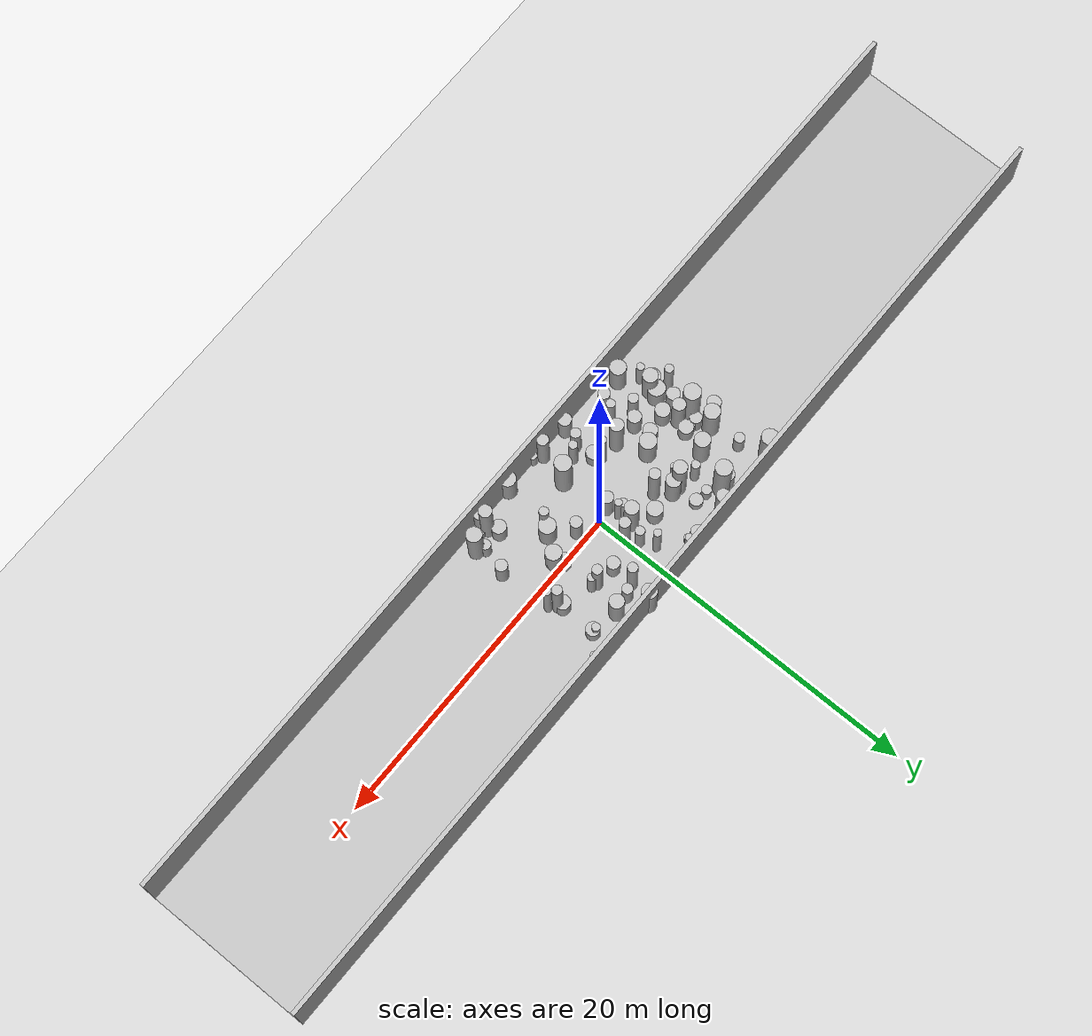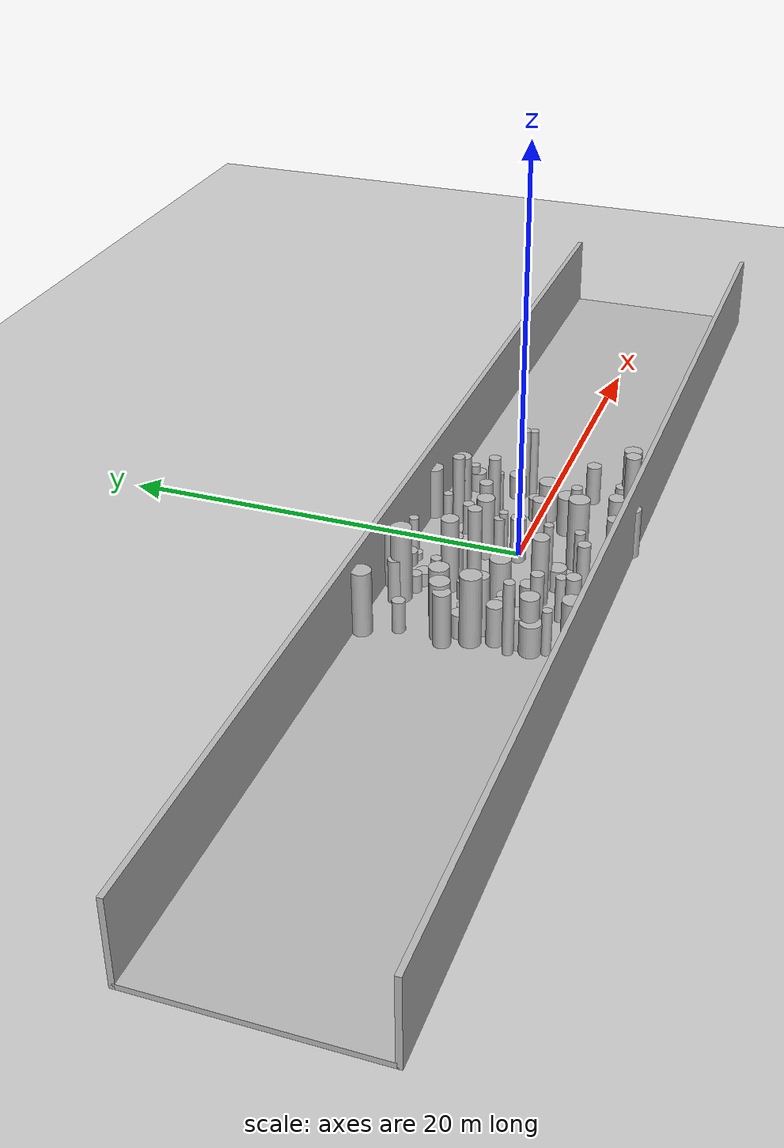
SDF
<sdf version="1.4">
 <world name="default">
  <include><uri>model://ground_plane</uri></include>
  <include><uri>model://sun</uri></include>
  <model name="forest">
   <static>true</static>
   <link name="cylinder6">
    <pose>3.5185023814617473 -0.5289069852324024 0.39152121170595017 0 0 0</pose>
    <visual name="visual">
     <geometry>
      <cylinder><radius>0.23570214300902984</radius><length>0.7830424234119003</length></cylinder>
     </geometry>
    </visual>
    <collision name="collision">
     <geometry>
      <cylinder><radius>0.23570214300902984</radius><length>0.7830424234119003</length></cylinder>
     </geometry>
     <max_contacts>0</max_contacts>
    </collision>
   </link>
   <link name="cylinder11">
    <pose>3.3686679684352363 3.89141718580448 1.4260544371908483 0 0 0</pose>
    <visual name="visual">
     <geometry>
      <cylinder><radius>0.4224523152110262</radius><length>2.8521088743816967</length></cylinder>
     </geometry>
    </visual>
    <collision name="collision">
     <geometry>
      <cylinder><radius>0.4224523152110262</radius><length>2.8521088743816967</length></cylinder>
     </geometry>
     <max_contacts>0</max_contacts>
    </collision>
   </link>
   <link name="cylinder14">
    <pose>5.428768677006516 0.9108389063789977 1.8576229997360225 0 0 0</pose>
    <visual name="visual">
     <geometry>
      <cylinder><radius>0.22108412347359485</radius><length>3.715245999472045</length></cylinder>
     </geometry>
    </visual>
    <collision name="collision">
     <geometry>
      <cylinder><radius>0.22108412347359485</radius><length>3.715245999472045</length></cylinder>
     </geometry>
     <max_contacts>0</max_contacts>
    </collision>
   </link>
   <link name="cylinder17">
    <pose>1.8629100106519232 4.8554674358730505 1.424527879419971 0 0 0</pose>
    <visual name="visual">
     <geometry>
      <cylinder><radius>0.44336391330813085</radius><length>2.849055758839942</length></cylinder>
     </geometry>
    </visual>
    <collision name="collision">
     <geometry>
      <cylinder><radius>0.44336391330813085</radius><length>2.849055758839942</length></cylinder>
     </geometry>
     <max_contacts>0</max_contacts>
    </collision>
   </link>
   <link name="cylinder20">
    <pose>-4.582425894276419 4.630502443168245 1.5284561691394896 0 0 0</pose>
    <visual name="visual">
     <geometry>
      <cylinder><radius>0.38533006311853774</radius><length>3.056912338278979</length></cylinder>
     </geometry>
    </visual>
    <collision name="collision">
     <geometry>
      <cylinder><radius>0.38533006311853774</radius><length>3.056912338278979</length></cylinder>
     </geometry>
     <max_contacts>0</max_contacts>
    </collision>
   </link>
   <link name="cylinder22">
    <pose>-2.8038115602074143 -2.1017270554419665 1.8182717871537928 0 0 0</pose>
    <visual name="visual">
     <geometry>
      <cylinder><radius>0.21597443946958594</radius><length>3.6365435743075856</length></cylinder>
     </geometry>
    </visual>
    <collision name="collision">
     <geometry>
      <cylinder><radius>0.21597443946958594</radius><length>3.6365435743075856</length></cylinder>
     </geometry>
     <max_contacts>0</max_contacts>
    </collision>
   </link>
   <link name="cylinder24">
    <pose>5.068609548155727 1.282792792949734 1.9314872287129736 0 0 0</pose>
    <visual name="visual">
     <geometry>
      <cylinder><radius>0.2920961110066845</radius><length>3.8629744574259473</length></cylinder>
     </geometry>
    </visual>
    <collision name="collision">
     <geometry>
      <cylinder><radius>0.2920961110066845</radius><length>3.8629744574259473</length></cylinder>
     </geometry>
     <max_contacts>0</max_contacts>
    </collision>
   </link>
   <link name="cylinder27">
    <pose>-4.551818297995101 -0.4273532509292117 1.2950522131416735 0 0 0</pose>
    <visual name="visual">
     <geometry>
      <cylinder><radius>0.4851396762435782</radius><length>2.590104426283347</length></cylinder>
     </geometry>
    </visual>
    <collision name="collision">
     <geometry>
      <cylinder><radius>0.4851396762435782</radius><length>2.590104426283347</length></cylinder>
     </geometry>
     <max_contacts>0</max_contacts>
    </collision>
   </link>
   <link name="cylinder29">
    <pose>-0.03519675320470128 1.655959014261005 1.8078357501995028 0 0 0</pose>
    <visual name="visual">
     <geometry>
      <cylinder><radius>0.3177926499357096</radius><length>3.6156715003990056</length></cylinder>
     </geometry>
    </visual>
    <collision name="collision">
     <geometry>
      <cylinder><radius>0.3177926499357096</radius><length>3.6156715003990056</length></cylinder>
     </geometry>
     <max_contacts>0</max_contacts>
    </collision>
   </link>
   <link name="cylinder33">
    <pose>4.9791727919138715 3.6066872790392157 0.6087659169997937 0 0 0</pose>
    <visual name="visual">
     <geometry>
      <cylinder><radius>0.40601135492092966</radius><length>1.2175318339995873</length></cylinder>
     </geometry>
    </visual>
    <collision name="collision">
     <geometry>
      <cylinder><radius>0.40601135492092966</radius><length>1.2175318339995873</length></cylinder>
     </geometry>
     <max_contacts>0</max_contacts>
    </collision>
   </link>
   <link name="cylinder35">
    <pose>-8.36797537119746 0.9935382336451521 1.450762492947488 0 0 0</pose>
    <visual name="visual">
     <geometry>
      <cylinder><radius>0.39625561410346916</radius><length>2.901524985894976</length></cylinder>
     </geometry>
    </visual>
    <collision name="collision">
     <geometry>
      <cylinder><radius>0.39625561410346916</radius><length>2.901524985894976</length></cylinder>
     </geometry>
     <max_contacts>0</max_contacts>
    </collision>
   </link>
   <link name="cylinder37">
    <pose>-7.121782881938877 0.5288827580215489 0.6344651029781753 0 0 0</pose>
    <visual name="visual">
     <geometry>
      <cylinder><radius>0.20164770665736817</radius><length>1.2689302059563505</length></cylinder>
     </geometry>
    </visual>
    <collision name="collision">
     <geometry>
      <cylinder><radius>0.20164770665736817</radius><length>1.2689302059563505</length></cylinder>
     </geometry>
     <max_contacts>0</max_contacts>
    </collision>
   </link>
   <link name="cylinder39">
    <pose>-6.638270380893967 -1.0880244645927197 0.8703303389355472 0 0 0</pose>
    <visual name="visual">
     <geometry>
      <cylinder><radius>0.4321729143397579</radius><length>1.7406606778710945</length></cylinder>
     </geometry>
    </visual>
    <collision name="collision">
     <geometry>
      <cylinder><radius>0.4321729143397579</radius><length>1.7406606778710945</length></cylinder>
     </geometry>
     <max_contacts>0</max_contacts>
    </collision>
   </link>
   <link name="cylinder41">
    <pose>-2.7175389624674793 4.491068459604094 0.4643532162588451 0 0 0</pose>
    <visual name="visual">
     <geometry>
      <cylinder><radius>0.3949513655718183</radius><length>0.9287064325176903</length></cylinder>
     </geometry>
    </visual>
    <collision name="collision">
     <geometry>
      <cylinder><radius>0.3949513655718183</radius><length>0.9287064325176903</length></cylinder>
     </geometry>
     <max_contacts>0</max_contacts>
    </collision>
   </link>
   <link name="cylinder42">
    <pose>5.435321524717381 -4.030631602253351 1.7378331856041922 0 0 0</pose>
    <visual name="visual">
     <geometry>
      <cylinder><radius>0.4397327907778434</radius><length>3.4756663712083844</length></cylinder>
     </geometry>
    </visual>
    <collision name="collision">
     <geometry>
      <cylinder><radius>0.4397327907778434</radius><length>3.4756663712083844</length></cylinder>
     </geometry>
     <max_contacts>0</max_contacts>
    </collision>
   </link>
   <link name="cylinder43">
    <pose>-0.42939339879843885 2.3731249413525664 1.2807768209993284 0 0 0</pose>
    <visual name="visual">
     <geometry>
      <cylinder><radius>0.2696798974898803</radius><length>2.561553641998657</length></cylinder>
     </geometry>
    </visual>
    <collision name="collision">
     <geometry>
      <cylinder><radius>0.2696798974898803</radius><length>2.561553641998657</length></cylinder>
     </geometry>
     <max_contacts>0</max_contacts>
    </collision>
   </link>
   <link name="cylinder46">
    <pose>-7.584552236493696 -3.4042703069322378 1.2165378588113809 0 0 0</pose>
    <visual name="visual">
     <geometry>
      <cylinder><radius>0.22346558559214158</radius><length>2.4330757176227618</length></cylinder>
     </geometry>
    </visual>
    <collision name="collision">
     <geometry>
      <cylinder><radius>0.22346558559214158</radius><length>2.4330757176227618</length></cylinder>
     </geometry>
     <max_contacts>0</max_contacts>
    </collision>
   </link>
   <link name="cylinder52">
    <pose>-5.837591543482734 4.02184528055051 1.2111605436664326 0 0 0</pose>
    <visual name="visual">
     <geometry>
      <cylinder><radius>0.34190522518814903</radius><length>2.422321087332865</length></cylinder>
     </geometry>
    </visual>
    <collision name="collision">
     <geometry>
      <cylinder><radius>0.34190522518814903</radius><length>2.422321087332865</length></cylinder>
     </geometry>
     <max_contacts>0</max_contacts>
    </collision>
   </link>
   <link name="cylinder53">
    <pose>-6.78520961096234 0.41298843062179547 0.6803893124168536 0 0 0</pose>
    <visual name="visual">
     <geometry>
      <cylinder><radius>0.42122331053432893</radius><length>1.3607786248337073</length></cylinder>
     </geometry>
    </visual>
    <collision name="collision">
     <geometry>
      <cylinder><radius>0.42122331053432893</radius><length>1.3607786248337073</length></cylinder>
     </geometry>
     <max_contacts>0</max_contacts>
    </collision>
   </link>
   <link name="cylinder54">
    <pose>1.292009153334039 -0.5652169246899916 1.2028669819020215 0 0 0</pose>
    <visual name="visual">
     <geometry>
      <cylinder><radius>0.3346198052062162</radius><length>2.405733963804043</length></cylinder>
     </geometry>
    </visual>
    <collision name="collision">
     <geometry>
      <cylinder><radius>0.3346198052062162</radius><length>2.405733963804043</length></cylinder>
     </geometry>
     <max_contacts>0</max_contacts>
    </collision>
   </link>
   <link name="cylinder55">
    <pose>-6.375352558614871 1.7987873984926273 1.395333566689384 0 0 0</pose>
    <visual name="visual">
     <geometry>
      <cylinder><radius>0.45533462670216324</radius><length>2.790667133378768</length></cylinder>
     </geometry>
    </visual>
    <collision name="collision">
     <geometry>
      <cylinder><radius>0.45533462670216324</radius><length>2.790667133378768</length></cylinder>
     </geometry>
     <max_contacts>0</max_contacts>
    </collision>
   </link>
   <link name="cylinder58">
    <pose>2.031621605337836 -2.1486612537931915 1.459682591462192 0 0 0</pose>
    <visual name="visual">
     <geometry>
      <cylinder><radius>0.2688347873922573</radius><length>2.919365182924384</length></cylinder>
     </geometry>
    </visual>
    <collision name="collision">
     <geometry>
      <cylinder><radius>0.2688347873922573</radius><length>2.919365182924384</length></cylinder>
     </geometry>
     <max_contacts>0</max_contacts>
    </collision>
   </link>
   <link name="cylinder61">
    <pose>-3.9157811447119037 4.613219586309514 0.35501372298618217 0 0 0</pose>
    <visual name="visual">
     <geometry>
      <cylinder><radius>0.28874540128218346</radius><length>0.7100274459723643</length></cylinder>
     </geometry>
    </visual>
    <collision name="collision">
     <geometry>
      <cylinder><radius>0.28874540128218346</radius><length>0.7100274459723643</length></cylinder>
     </geometry>
     <max_contacts>0</max_contacts>
    </collision>
   </link>
   <link name="cylinder67">
    <pose>-4.726940750155467 1.2831766855861932 0.5821106491188945 0 0 0</pose>
    <visual name="visual">
     <geometry>
      <cylinder><radius>0.21715590679515623</radius><length>1.164221298237789</length></cylinder>
     </geometry>
    </visual>
    <collision name="collision">
     <geometry>
      <cylinder><radius>0.21715590679515623</radius><length>1.164221298237789</length></cylinder>
     </geometry>
     <max_contacts>0</max_contacts>
    </collision>
   </link>
   <link name="cylinder68">
    <pose>-8.06831903170766 -1.8586471831165174 1.9072403379446587 0 0 0</pose>
    <visual name="visual">
     <geometry>
      <cylinder><radius>0.2509423791881883</radius><length>3.8144806758893175</length></cylinder>
     </geometry>
    </visual>
    <collision name="collision">
     <geometry>
      <cylinder><radius>0.2509423791881883</radius><length>3.8144806758893175</length></cylinder>
     </geometry>
     <max_contacts>0</max_contacts>
    </collision>
   </link>
   <link name="cylinder75">
    <pose>-7.86339897560223 -0.11784825348554229 1.8417994693246726 0 0 0</pose>
    <visual name="visual">
     <geometry>
      <cylinder><radius>0.48812707964760427</radius><length>3.6835989386493453</length></cylinder>
     </geometry>
    </visual>
    <collision name="collision">
     <geometry>
      <cylinder><radius>0.48812707964760427</radius><length>3.6835989386493453</length></cylinder>
     </geometry>
     <max_contacts>0</max_contacts>
    </collision>
   </link>
   <link name="cylinder77">
    <pose>-7.9929294260253485 3.0834245214219056 0.9000446579199859 0 0 0</pose>
    <visual name="visual">
     <geometry>
      <cylinder><radius>0.30213135898434745</radius><length>1.8000893158399718</length></cylinder>
     </geometry>
    </visual>
    <collision name="collision">
     <geometry>
      <cylinder><radius>0.30213135898434745</radius><length>1.8000893158399718</length></cylinder>
     </geometry>
     <max_contacts>0</max_contacts>
    </collision>
   </link>
   <link name="cylinder85">
    <pose>-4.9479325844891555 -3.3142753631086483 1.232136252204616 0 0 0</pose>
    <visual name="visual">
     <geometry>
      <cylinder><radius>0.2583030177528004</radius><length>2.464272504409232</length></cylinder>
     </geometry>
    </visual>
    <collision name="collision">
     <geometry>
      <cylinder><radius>0.2583030177528004</radius><length>2.464272504409232</length></cylinder>
     </geometry>
     <max_contacts>0</max_contacts>
    </collision>
   </link>
   <link name="cylinder89">
    <pose>-4.133881578881432 2.0504461589010035 1.9580861341889344 0 0 0</pose>
    <visual name="visual">
     <geometry>
      <cylinder><radius>0.4007452378426113</radius><length>3.916172268377869</length></cylinder>
     </geometry>
    </visual>
    <collision name="collision">
     <geometry>
      <cylinder><radius>0.4007452378426113</radius><length>3.916172268377869</length></cylinder>
     </geometry>
     <max_contacts>0</max_contacts>
    </collision>
   </link>
   <link name="cylinder91">
    <pose>5.568027956149539 -2.129386242136756 1.122439592235711 0 0 0</pose>
    <visual name="visual">
     <geometry>
      <cylinder><radius>0.3507586706097388</radius><length>2.244879184471422</length></cylinder>
     </geometry>
    </visual>
    <collision name="collision">
     <geometry>
      <cylinder><radius>0.3507586706097388</radius><length>2.244879184471422</length></cylinder>
     </geometry>
     <max_contacts>0</max_contacts>
    </collision>
   </link>
   <link name="cylinder92">
    <pose>4.62457770195504 -4.654079184292642 0.53921626713819 0 0 0</pose>
    <visual name="visual">
     <geometry><cylinder><radius>0.4698151321451813</radius><length>1.07843253427638</length></cylinder></geometry>
    </visual>
    <collision name="collision">
     <geometry><cylinder><radius>0.4698151321451813</radius><length>1.07843253427638</length></cylinder></geometry>
     <max_contacts>0</max_contacts>
    </collision>
   </link>
   <link name="cylinder95">
    <pose>-4.063080111225741 3.3109602660396096 0.4492727110088675 0 0 0</pose>
    <visual name="visual">
     <geometry>
      <cylinder><radius>0.3734270932033604</radius><length>0.898545422017735</length></cylinder>
     </geometry>
    </visual>
    <collision name="collision">
     <geometry>
      <cylinder><radius>0.3734270932033604</radius><length>0.898545422017735</length></cylinder>
     </geometry>
     <max_contacts>0</max_contacts>
    </collision>
   </link>
   <link name="cylinder100">
    <pose>-5.304415636830189 -1.9452511584971974 1.0250195915184142 0 0 0</pose>
    <visual name="visual">
     <geometry>
      <cylinder><radius>0.38851414279175367</radius><length>2.0500391830368283</length></cylinder>
     </geometry>
    </visual>
    <collision name="collision">
     <geometry>
      <cylinder><radius>0.38851414279175367</radius><length>2.0500391830368283</length></cylinder>
     </geometry>
     <max_contacts>0</max_contacts>
    </collision>
   </link>
   <link name="cylinder101">
    <pose>-0.8791108530786254 0.5381958660300565 1.3533509763045644 0 0 0</pose>
    <visual name="visual">
     <geometry>
      <cylinder><radius>0.20992691567685062</radius><length>2.7067019526091287</length></cylinder>
     </geometry>
    </visual>
    <collision name="collision">
     <geometry>
      <cylinder><radius>0.20992691567685062</radius><length>2.7067019526091287</length></cylinder>
     </geometry>
     <max_contacts>0</max_contacts>
    </collision>
   </link>
   <link name="cylinder102">
    <pose>2.359691901459893 -1.6537936487013818 1.1095147916537897 0 0 0</pose>
    <visual name="visual">
     <geometry>
      <cylinder><radius>0.4841076681313177</radius><length>2.2190295833075795</length></cylinder>
     </geometry>
    </visual>
    <collision name="collision">
     <geometry>
      <cylinder><radius>0.4841076681313177</radius><length>2.2190295833075795</length></cylinder>
     </geometry>
     <max_contacts>0</max_contacts>
    </collision>
   </link>
   <link name="cylinder107">
    <pose>-7.5667391604941905 -1.1262234624518919 1.1116669008024314 0 0 0</pose>
    <visual name="visual">
     <geometry>
      <cylinder><radius>0.38654785589996177</radius><length>2.2233338016048627</length></cylinder>
     </geometry>
    </visual>
    <collision name="collision">
     <geometry>
      <cylinder><radius>0.38654785589996177</radius><length>2.2233338016048627</length></cylinder>
     </geometry>
     <max_contacts>0</max_contacts>
    </collision>
   </link>
   <link name="cylinder108">
    <pose>-4.781896564689426 3.4356363931823974 0.5766766952382925 0 0 0</pose>
    <visual name="visual">
     <geometry>
      <cylinder><radius>0.2830579079482414</radius><length>1.153353390476585</length></cylinder>
     </geometry>
    </visual>
    <collision name="collision">
     <geometry>
      <cylinder><radius>0.2830579079482414</radius><length>1.153353390476585</length></cylinder>
     </geometry>
     <max_contacts>0</max_contacts>
    </collision>
   </link>
   <link name="cylinder110">
    <pose>-1.7820644085235742 -3.2928867336535426 1.4472986856161145 0 0 0</pose>
    <visual name="visual">
     <geometry>
      <cylinder><radius>0.24222179428633966</radius><length>2.894597371232229</length></cylinder>
     </geometry>
    </visual>
    <collision name="collision">
     <geometry>
      <cylinder><radius>0.24222179428633966</radius><length>2.894597371232229</length></cylinder>
     </geometry>
     <max_contacts>0</max_contacts>
    </collision>
   </link>
   <link name="cylinder111">
    <pose>-7.738419218163518 -2.741941550900735 0.8919443139001757 0 0 0</pose>
    <visual name="visual">
     <geometry>
      <cylinder><radius>0.49499994064638964</radius><length>1.7838886278003514</length></cylinder>
     </geometry>
    </visual>
    <collision name="collision">
     <geometry>
      <cylinder><radius>0.49499994064638964</radius><length>1.7838886278003514</length></cylinder>
     </geometry>
     <max_contacts>0</max_contacts>
    </collision>
   </link>
   <link name="cylinder114">
    <pose>-1.8825665534972345 4.5487787415198895 1.1060311966908014 0 0 0</pose>
    <visual name="visual">
     <geometry>
      <cylinder><radius>0.2293340421734429</radius><length>2.212062393381603</length></cylinder>
     </geometry>
    </visual>
    <collision name="collision">
     <geometry>
      <cylinder><radius>0.2293340421734429</radius><length>2.212062393381603</length></cylinder>
     </geometry>
     <max_contacts>0</max_contacts>
    </collision>
   </link>
   <link name="cylinder118">
    <pose>1.6154260623438503 2.233932719052442 0.8501620640769003 0 0 0</pose>
    <visual name="visual">
     <geometry>
      <cylinder><radius>0.37704019793430926</radius><length>1.7003241281538006</length></cylinder>
     </geometry>
    </visual>
    <collision name="collision">
     <geometry>
      <cylinder><radius>0.37704019793430926</radius><length>1.7003241281538006</length></cylinder>
     </geometry>
     <max_contacts>0</max_contacts>
    </collision>
   </link>
   <link name="cylinder123">
    <pose>5.103503663450859 -3.6351608006627245 0.8015108190778302 0 0 0</pose>
    <visual name="visual">
     <geometry>
      <cylinder><radius>0.29943888863966983</radius><length>1.6030216381556603</length></cylinder>
     </geometry>
    </visual>
    <collision name="collision">
     <geometry>
      <cylinder><radius>0.29943888863966983</radius><length>1.6030216381556603</length></cylinder>
     </geometry>
     <max_contacts>0</max_contacts>
    </collision>
   </link>
   <link name="cylinder131">
    <pose>-0.7801636043734419 -0.150089046171205 1.2463945065441315 0 0 0</pose>
    <visual name="visual">
     <geometry>
      <cylinder><radius>0.3616465610508588</radius><length>2.492789013088263</length></cylinder>
     </geometry>
    </visual>
    <collision name="collision">
     <geometry>
      <cylinder><radius>0.3616465610508588</radius><length>2.492789013088263</length></cylinder>
     </geometry>
     <max_contacts>0</max_contacts>
    </collision>
   </link>
   <link name="cylinder132">
    <pose>4.169947233092998 -4.313478109241666 1.937510638481081 0 0 0</pose>
    <visual name="visual">
     <geometry>
      <cylinder><radius>0.36855853010477235</radius><length>3.875021276962162</length></cylinder>
     </geometry>
    </visual>
    <collision name="collision">
     <geometry>
      <cylinder><radius>0.36855853010477235</radius><length>3.875021276962162</length></cylinder>
     </geometry>
     <max_contacts>0</max_contacts>
    </collision>
   </link>
   <link name="cylinder135">
    <pose>-2.0958335533236614 2.052365802990902 0.8374159650345436 0 0 0</pose>
    <visual name="visual">
     <geometry>
      <cylinder><radius>0.4544328570836889</radius><length>1.6748319300690873</length></cylinder>
     </geometry>
    </visual>
    <collision name="collision">
     <geometry>
      <cylinder><radius>0.4544328570836889</radius><length>1.6748319300690873</length></cylinder>
     </geometry>
     <max_contacts>0</max_contacts>
    </collision>
   </link>
   <link name="cylinder141">
    <pose>5.939470307940191 4.496486625146176 0.38602793769903704 0 0 0</pose>
    <visual name="visual">
     <geometry>
      <cylinder><radius>0.23527448203063736</radius><length>0.7720558753980741</length></cylinder>
     </geometry>
    </visual>
    <collision name="collision">
     <geometry>
      <cylinder><radius>0.23527448203063736</radius><length>0.7720558753980741</length></cylinder>
     </geometry>
     <max_contacts>0</max_contacts>
    </collision>
   </link>
   <link name="cylinder142">
    <pose>-0.8719587765020584 -4.6155493158363665 1.6666019485280386 0 0 0</pose>
    <visual name="visual">
     <geometry>
      <cylinder><radius>0.33180802724797065</radius><length>3.333203897056077</length></cylinder>
     </geometry>
    </visual>
    <collision name="collision">
     <geometry>
      <cylinder><radius>0.33180802724797065</radius><length>3.333203897056077</length></cylinder>
     </geometry>
     <max_contacts>0</max_contacts>
    </collision>
   </link>
   <link name="cylinder144">
    <pose>-1.094753909102863 0.6763799533621597 1.2402863712947536 0 0 0</pose>
    <visual name="visual">
     <geometry>
      <cylinder><radius>0.2472618622897371</radius><length>2.480572742589507</length></cylinder>
     </geometry>
    </visual>
    <collision name="collision">
     <geometry>
      <cylinder><radius>0.2472618622897371</radius><length>2.480572742589507</length></cylinder>
     </geometry>
     <max_contacts>0</max_contacts>
    </collision>
   </link>
   <link name="cylinder151">
    <pose>3.0995055907705797 1.9863765858106017 1.1941451476075606 0 0 0</pose>
    <visual name="visual">
     <geometry>
      <cylinder><radius>0.2401048341541558</radius><length>2.3882902952151213</length></cylinder>
     </geometry>
    </visual>
    <collision name="collision">
     <geometry>
      <cylinder><radius>0.2401048341541558</radius><length>2.3882902952151213</length></cylinder>
     </geometry>
     <max_contacts>0</max_contacts>
    </collision>
   </link>
   <link name="cylinder155">
    <pose>-7.853638606802438 1.2653129247641246 1.5405360413037148 0 0 0</pose>
    <visual name="visual">
     <geometry>
      <cylinder><radius>0.45974221142608956</radius><length>3.0810720826074296</length></cylinder>
     </geometry>
    </visual>
    <collision name="collision">
     <geometry>
      <cylinder><radius>0.45974221142608956</radius><length>3.0810720826074296</length></cylinder>
     </geometry>
     <max_contacts>0</max_contacts>
    </collision>
   </link>
   <link name="cylinder159">
    <pose>-5.17032720073934 2.3278282235750822 1.2100075372433219 0 0 0</pose>
    <visual name="visual">
     <geometry>
      <cylinder><radius>0.24673944830269962</radius><length>2.4200150744866438</length></cylinder>
     </geometry>
    </visual>
    <collision name="collision">
     <geometry>
      <cylinder><radius>0.24673944830269962</radius><length>2.4200150744866438</length></cylinder>
     </geometry>
     <max_contacts>0</max_contacts>
    </collision>
   </link>
   <link name="cylinder165">
    <pose>4.868396753213833 3.723186111048655 0.8080699979317668 0 0 0</pose>
    <visual name="visual">
     <geometry>
      <cylinder><radius>0.23584440354552416</radius><length>1.6161399958635336</length></cylinder>
     </geometry>
    </visual>
    <collision name="collision">
     <geometry>
      <cylinder><radius>0.23584440354552416</radius><length>1.6161399958635336</length></cylinder>
     </geometry>
     <max_contacts>0</max_contacts>
    </collision>
   </link>
   <link name="cylinder169">
    <pose>-5.80126149885886 -2.4602700475481076 1.4835407058492824 0 0 0</pose>
    <visual name="visual">
     <geometry><cylinder><radius>0.295815843256171</radius><length>2.967081411698565</length></cylinder></geometry>
    </visual>
    <collision name="collision">
     <geometry><cylinder><radius>0.295815843256171</radius><length>2.967081411698565</length></cylinder></geometry>
     <max_contacts>0</max_contacts>
    </collision>
   </link>
   <link name="cylinder170">
    <pose>-0.9453779610122268 1.375945474798117 1.6748570057047196 0 0 0</pose>
    <visual name="visual">
     <geometry>
      <cylinder><radius>0.4101207807458317</radius><length>3.3497140114094393</length></cylinder>
     </geometry>
    </visual>
    <collision name="collision">
     <geometry>
      <cylinder><radius>0.4101207807458317</radius><length>3.3497140114094393</length></cylinder>
     </geometry>
     <max_contacts>0</max_contacts>
    </collision>
   </link>
   <link name="cylinder174">
    <pose>-3.006451312456882 1.254470587256833 1.9706674856594382 0 0 0</pose>
    <visual name="visual">
     <geometry>
      <cylinder><radius>0.3213861851763068</radius><length>3.9413349713188763</length></cylinder>
     </geometry>
    </visual>
    <collision name="collision">
     <geometry>
      <cylinder><radius>0.3213861851763068</radius><length>3.9413349713188763</length></cylinder>
     </geometry>
     <max_contacts>0</max_contacts>
    </collision>
   </link>
   <link name="cylinder180">
    <pose>3.0407207709707826 0.047815309467164724 0.7211353288050918 0 0 0</pose>
    <visual name="visual">
     <geometry>
      <cylinder><radius>0.3730804103344416</radius><length>1.4422706576101836</length></cylinder>
     </geometry>
    </visual>
    <collision name="collision">
     <geometry>
      <cylinder><radius>0.3730804103344416</radius><length>1.4422706576101836</length></cylinder>
     </geometry>
     <max_contacts>0</max_contacts>
    </collision>
   </link>
   <link name="cylinder183">
    <pose>3.2916543806976577 -0.4611899866513376 1.131671608033827 0 0 0</pose>
    <visual name="visual">
     <geometry>
      <cylinder><radius>0.46799469538631927</radius><length>2.263343216067654</length></cylinder>
     </geometry>
    </visual>
    <collision name="collision">
     <geometry>
      <cylinder><radius>0.46799469538631927</radius><length>2.263343216067654</length></cylinder>
     </geometry>
     <max_contacts>0</max_contacts>
    </collision>
   </link>
   <link name="cylinder186">
    <pose>-7.362092057929836 -2.0931903494131343 0.9224191874178875 0 0 0</pose>
    <visual name="visual">
     <geometry>
      <cylinder><radius>0.4954029734934168</radius><length>1.844838374835775</length></cylinder>
     </geometry>
    </visual>
    <collision name="collision">
     <geometry>
      <cylinder><radius>0.4954029734934168</radius><length>1.844838374835775</length></cylinder>
     </geometry>
     <max_contacts>0</max_contacts>
    </collision>
   </link>
   <link name="cylinder189">
    <pose>-0.4539019729747409 -2.87350506374332 1.8964646522176463 0 0 0</pose>
    <visual name="visual">
     <geometry>
      <cylinder><radius>0.4870317236346289</radius><length>3.7929293044352925</length></cylinder>
     </geometry>
    </visual>
    <collision name="collision">
     <geometry>
      <cylinder><radius>0.4870317236346289</radius><length>3.7929293044352925</length></cylinder>
     </geometry>
     <max_contacts>0</max_contacts>
    </collision>
   </link>
   <link name="cylinder191">
    <pose>-0.34362502153142316 -4.899718720312674 0.6577862824795322 0 0 0</pose>
    <visual name="visual">
     <geometry>
      <cylinder><radius>0.22334584676981428</radius><length>1.3155725649590644</length></cylinder>
     </geometry>
    </visual>
    <collision name="collision">
     <geometry>
      <cylinder><radius>0.22334584676981428</radius><length>1.3155725649590644</length></cylinder>
     </geometry>
     <max_contacts>0</max_contacts>
    </collision>
   </link>
   <link name="cylinder194">
    <pose>2.32924743152898 3.7701776928540305 1.0433783294965275 0 0 0</pose>
    <visual name="visual">
     <geometry>
      <cylinder><radius>0.30374553742472143</radius><length>2.086756658993055</length></cylinder>
     </geometry>
    </visual>
    <collision name="collision">
     <geometry>
      <cylinder><radius>0.30374553742472143</radius><length>2.086756658993055</length></cylinder>
     </geometry>
     <max_contacts>0</max_contacts>
    </collision>
   </link>
   <link name="cylinder197">
    <pose>1.7558704998155648 -4.859777973959286 1.2329090905790767 0 0 0</pose>
    <visual name="visual">
     <geometry>
      <cylinder><radius>0.45902501582334304</radius><length>2.4658181811581534</length></cylinder>
     </geometry>
    </visual>
    <collision name="collision">
     <geometry>
      <cylinder><radius>0.45902501582334304</radius><length>2.4658181811581534</length></cylinder>
     </geometry>
     <max_contacts>0</max_contacts>
    </collision>
   </link>
   <link name="cylinder204">
    <pose>-7.51185301659784 0.49860019519103993 0.7160447449226214 0 0 0</pose>
    <visual name="visual">
     <geometry>
      <cylinder><radius>0.3563672072978108</radius><length>1.4320894898452428</length></cylinder>
     </geometry>
    </visual>
    <collision name="collision">
     <geometry>
      <cylinder><radius>0.3563672072978108</radius><length>1.4320894898452428</length></cylinder>
     </geometry>
     <max_contacts>0</max_contacts>
    </collision>
   </link>
   <link name="cylinder205">
    <pose>-2.550080547083759 -2.51753691965365 0.6707613321633495 0 0 0</pose>
    <visual name="visual">
     <geometry>
      <cylinder><radius>0.43229291049036384</radius><length>1.341522664326699</length></cylinder>
     </geometry>
    </visual>
    <collision name="collision">
     <geometry>
      <cylinder><radius>0.43229291049036384</radius><length>1.341522664326699</length></cylinder>
     </geometry>
     <max_contacts>0</max_contacts>
    </collision>
   </link>
   <link name="cylinder206">
    <pose>-7.015962601237803 -0.3151775573696103 1.5915860019968862 0 0 0</pose>
    <visual name="visual">
     <geometry>
      <cylinder><radius>0.3747285023931062</radius><length>3.1831720039937723</length></cylinder>
     </geometry>
    </visual>
    <collision name="collision">
     <geometry>
      <cylinder><radius>0.3747285023931062</radius><length>3.1831720039937723</length></cylinder>
     </geometry>
     <max_contacts>0</max_contacts>
    </collision>
   </link>
   <link name="cylinder207">
    <pose>-2.2160817966850885 4.266644064344327 0.30300212231280116 0 0 0</pose>
    <visual name="visual">
     <geometry>
      <cylinder><radius>0.2530721346632694</radius><length>0.6060042446256023</length></cylinder>
     </geometry>
    </visual>
    <collision name="collision">
     <geometry>
      <cylinder><radius>0.2530721346632694</radius><length>0.6060042446256023</length></cylinder>
     </geometry>
     <max_contacts>0</max_contacts>
    </collision>
   </link>
   <link name="cylinder209">
    <pose>2.795833816445718 2.108234557982586 1.684196436659474 0 0 0</pose>
    <visual name="visual">
     <geometry>
      <cylinder><radius>0.2931208332322532</radius><length>3.368392873318948</length></cylinder>
     </geometry>
    </visual>
    <collision name="collision">
     <geometry>
      <cylinder><radius>0.2931208332322532</radius><length>3.368392873318948</length></cylinder>
     </geometry>
     <max_contacts>0</max_contacts>
    </collision>
   </link>
   <link name="cylinder212">
    <pose>-2.7474906566326887 -4.672295906033128 1.1500265319144598 0 0 0</pose>
    <visual name="visual">
     <geometry>
      <cylinder><radius>0.3801928645143435</radius><length>2.3000530638289196</length></cylinder>
     </geometry>
    </visual>
    <collision name="collision">
     <geometry>
      <cylinder><radius>0.3801928645143435</radius><length>2.3000530638289196</length></cylinder>
     </geometry>
     <max_contacts>0</max_contacts>
    </collision>
   </link>
   <link name="cylinder215">
    <pose>4.908481004173865 1.5026344409390582 0.7265643734508178 0 0 0</pose>
    <visual name="visual">
     <geometry>
      <cylinder><radius>0.42745482796522555</radius><length>1.4531287469016356</length></cylinder>
     </geometry>
    </visual>
    <collision name="collision">
     <geometry>
      <cylinder><radius>0.42745482796522555</radius><length>1.4531287469016356</length></cylinder>
     </geometry>
     <max_contacts>0</max_contacts>
    </collision>
   </link>
   <link name="cylinder218">
    <pose>3.9003662933380134 -3.7181047179707383 0.8135336896817561 0 0 0</pose>
    <visual name="visual">
     <geometry>
      <cylinder><radius>0.4179787848120151</radius><length>1.6270673793635122</length></cylinder>
     </geometry>
    </visual>
    <collision name="collision">
     <geometry>
      <cylinder><radius>0.4179787848120151</radius><length>1.6270673793635122</length></cylinder>
     </geometry>
     <max_contacts>0</max_contacts>
    </collision>
   </link>
   <link name="cylinder221">
    <pose>-3.9148912489999503 -2.0544718108284723 1.815556932098583 0 0 0</pose>
    <visual name="visual">
     <geometry>
      <cylinder><radius>0.3876270864312652</radius><length>3.631113864197166</length></cylinder>
     </geometry>
    </visual>
    <collision name="collision">
     <geometry>
      <cylinder><radius>0.3876270864312652</radius><length>3.631113864197166</length></cylinder>
     </geometry>
     <max_contacts>0</max_contacts>
    </collision>
   </link>
   <link name="cylinder224">
    <pose>-5.5540990794634055 3.835667629254667 1.9618387699920163 0 0 0</pose>
    <visual name="visual">
     <geometry>
      <cylinder><radius>0.4758456125194723</radius><length>3.9236775399840327</length></cylinder>
     </geometry>
    </visual>
    <collision name="collision">
     <geometry>
      <cylinder><radius>0.4758456125194723</radius><length>3.9236775399840327</length></cylinder>
     </geometry>
     <max_contacts>0</max_contacts>
    </collision>
   </link>
   <link name="cylinder225">
    <pose>4.162549703332562 -4.70464071353473 1.3705725299421663 0 0 0</pose>
    <visual name="visual">
     <geometry>
      <cylinder><radius>0.41458877099835245</radius><length>2.7411450598843325</length></cylinder>
     </geometry>
    </visual>
    <collision name="collision">
     <geometry>
      <cylinder><radius>0.41458877099835245</radius><length>2.7411450598843325</length></cylinder>
     </geometry>
     <max_contacts>0</max_contacts>
    </collision>
   </link>
   <link name="cylinder230">
    <pose>-5.107230874407016 -3.89208770190577 1.344483336120628 0 0 0</pose>
    <visual name="visual">
     <geometry>
      <cylinder><radius>0.3418239859709521</radius><length>2.688966672241256</length></cylinder>
     </geometry>
    </visual>
    <collision name="collision">
     <geometry>
      <cylinder><radius>0.3418239859709521</radius><length>2.688966672241256</length></cylinder>
     </geometry>
     <max_contacts>0</max_contacts>
    </collision>
   </link>
   <link name="cylinder231">
    <pose>-8.582024680360657 4.561009690546289 1.6909687905913158 0 0 0</pose>
    <visual name="visual">
     <geometry>
      <cylinder><radius>0.4669039757941734</radius><length>3.3819375811826315</length></cylinder>
     </geometry>
    </visual>
    <collision name="collision">
     <geometry>
      <cylinder><radius>0.4669039757941734</radius><length>3.3819375811826315</length></cylinder>
     </geometry>
     <max_contacts>0</max_contacts>
    </collision>
   </link>
   <link name="cylinder232">
    <pose>-0.7889109068634994 3.249373504039486 1.5760307365537891 0 0 0</pose>
    <visual name="visual">
     <geometry>
      <cylinder><radius>0.22158439647501624</radius><length>3.1520614731075782</length></cylinder>
     </geometry>
    </visual>
    <collision name="collision">
     <geometry>
      <cylinder><radius>0.22158439647501624</radius><length>3.1520614731075782</length></cylinder>
     </geometry>
     <max_contacts>0</max_contacts>
    </collision>
   </link>
   <link name="cylinder233">
    <pose>1.6369065227269886 3.5368454956445934 1.885192760961611 0 0 0</pose>
    <visual name="visual">
     <geometry>
      <cylinder><radius>0.28603770028551473</radius><length>3.770385521923222</length></cylinder>
     </geometry>
    </visual>
    <collision name="collision">
     <geometry>
      <cylinder><radius>0.28603770028551473</radius><length>3.770385521923222</length></cylinder>
     </geometry>
     <max_contacts>0</max_contacts>
    </collision>
   </link>
   <link name="cylinder236">
    <pose>-5.433792889295724 -0.9619774982750009 0.6741940636997756 0 0 0</pose>
    <visual name="visual">
     <geometry>
      <cylinder><radius>0.4163227278838775</radius><length>1.3483881273995513</length></cylinder>
     </geometry>
    </visual>
    <collision name="collision">
     <geometry>
      <cylinder><radius>0.4163227278838775</radius><length>1.3483881273995513</length></cylinder>
     </geometry>
     <max_contacts>0</max_contacts>
    </collision>
   </link>
   <link name="cylinder241">
    <pose>-2.4215838750357506 -3.6539310545265655 1.3575911027476744 0 0 0</pose>
    <visual name="visual">
     <geometry>
      <cylinder><radius>0.29959515916686197</radius><length>2.7151822054953487</length></cylinder>
     </geometry>
    </visual>
    <collision name="collision">
     <geometry>
      <cylinder><radius>0.29959515916686197</radius><length>2.7151822054953487</length></cylinder>
     </geometry>
     <max_contacts>0</max_contacts>
    </collision>
   </link>
   <link name="cylinder245">
    <pose>-7.405152290098538 -2.5867472575163197 1.4300969823140168 0 0 0</pose>
    <visual name="visual">
     <geometry>
      <cylinder><radius>0.43130535787267815</radius><length>2.8601939646280337</length></cylinder>
     </geometry>
    </visual>
    <collision name="collision">
     <geometry>
      <cylinder><radius>0.43130535787267815</radius><length>2.8601939646280337</length></cylinder>
     </geometry>
     <max_contacts>0</max_contacts>
    </collision>
   </link>
   <link name="cylinder247">
    <pose>-6.743323063161672 -4.270279834828029 1.2999136396877051 0 0 0</pose>
    <visual name="visual">
     <geometry>
      <cylinder><radius>0.46193032925364963</radius><length>2.5998272793754102</length></cylinder>
     </geometry>
    </visual>
    <collision name="collision">
     <geometry>
      <cylinder><radius>0.46193032925364963</radius><length>2.5998272793754102</length></cylinder>
     </geometry>
     <max_contacts>0</max_contacts>
    </collision>
   </link>
   <link name="cylinder249">
    <pose>-3.66645903507602 2.0216244455019847 1.375911443505229 0 0 0</pose>
    <visual name="visual">
     <geometry>
      <cylinder><radius>0.42771138470213826</radius><length>2.751822887010458</length></cylinder>
     </geometry>
    </visual>
    <collision name="collision">
     <geometry>
      <cylinder><radius>0.42771138470213826</radius><length>2.751822887010458</length></cylinder>
     </geometry>
     <max_contacts>0</max_contacts>
    </collision>
   </link>
   <link name="cube0">
    <pose>0 5.0 2.0 0 0 0</pose>
    <visual name="visual"><geometry><box><size>60.0 0.25 4.0</size></box></geometry></visual>
    <collision name="collision">
     <geometry><box><size>60.0 0.25 4.0</size></box></geometry>
     <max_contacts>0</max_contacts>
    </collision>
   </link>
   <link name="cube1">
    <pose>0 -5.0 2.0 0 0 0</pose>
    <visual name="visual"><geometry><box><size>60.0 0.25 4.0</size></box></geometry></visual>
    <collision name="collision">
     <geometry><box><size>60.0 0.25 4.0</size></box></geometry>
     <max_contacts>0</max_contacts>
    </collision>
   </link>
   <link name="cube2">
    <pose>0 0 0.125 0 0 0</pose>
    <visual name="visual"><geometry><box><size>60.0 10 0.25</size></box></geometry></visual>
    <collision name="collision">
     <geometry><box><size>60.0 10 0.25</size></box></geometry>
     <max_contacts>0</max_contacts>
    </collision>
   </link>
  </model>
 </world>
</sdf>
